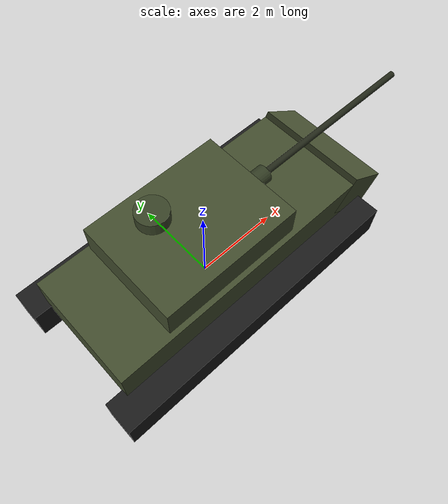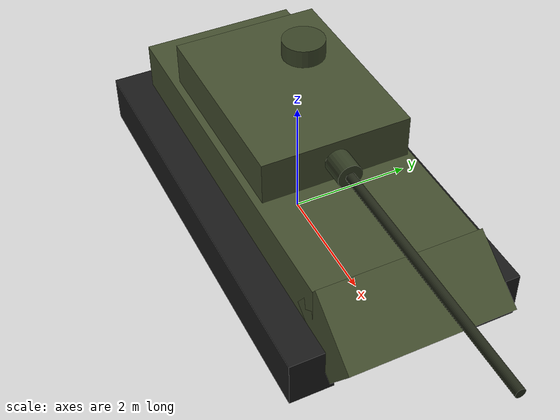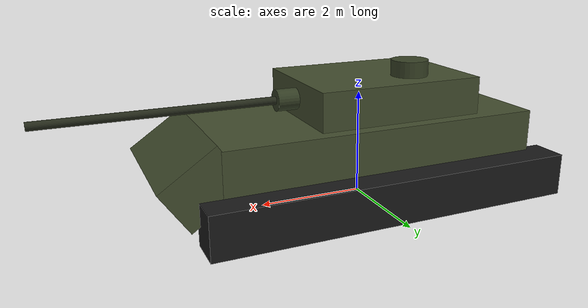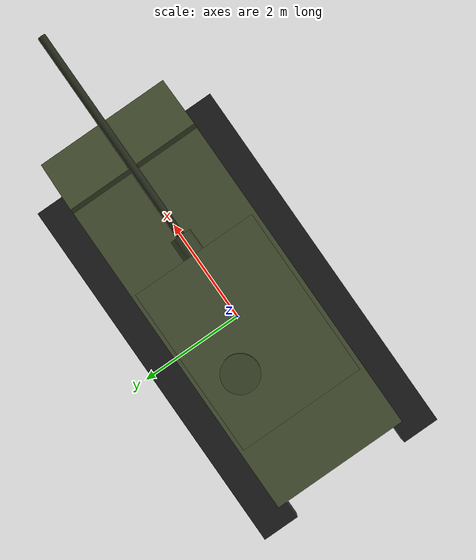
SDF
<?xml version="1.0" ?>
<sdf version="1.9">
  <model name="tank">
    <static>true</static>

    <link name="body">

      <!-- ================= TRACKS ================= -->
      <visual name="track_left_visual">
        <pose>0 1.5 0.4 0 0 0</pose>
        <geometry><box><size>7.0 0.7 0.8</size></box></geometry>
        <material>
          <ambient>0.06 0.06 0.06 1</ambient>
          <diffuse>0.10 0.10 0.10 1</diffuse>
          <specular>0.05 0.05 0.05 1</specular>
        </material>
      </visual>
      <collision name="track_left_collision">
        <pose>0 1.5 0.4 0 0 0</pose>
        <geometry><box><size>7.0 0.7 0.8</size></box></geometry>
      </collision>

      <visual name="track_right_visual">
        <pose>0 -1.5 0.4 0 0 0</pose>
        <geometry><box><size>7.0 0.7 0.8</size></box></geometry>
        <material>
          <ambient>0.06 0.06 0.06 1</ambient>
          <diffuse>0.10 0.10 0.10 1</diffuse>
          <specular>0.05 0.05 0.05 1</specular>
        </material>
      </visual>
      <collision name="track_right_collision">
        <pose>0 -1.5 0.4 0 0 0</pose>
        <geometry><box><size>7.0 0.7 0.8</size></box></geometry>
      </collision>

      <!-- ================= HULL ================= -->
      <visual name="hull_visual">
        <pose>0 0 1.1 0 0 0</pose>
        <geometry><box><size>6.2 2.6 1.0</size></box></geometry>
        <material>
          <ambient>0.20 0.24 0.14 1</ambient>
          <diffuse>0.26 0.30 0.18 1</diffuse>
          <specular>0.10 0.10 0.08 1</specular>
        </material>
      </visual>
      <collision name="hull_collision">
        <pose>0 0 1.1 0 0 0</pose>
        <geometry><box><size>6.2 2.6 1.0</size></box></geometry>
      </collision>

      <!-- sloped glacis plate at the front for silhouette -->
      <visual name="glacis_visual">
        <pose>3.4 0 1.0 0 0.6 0</pose>
        <geometry><box><size>1.2 2.6 0.9</size></box></geometry>
        <material>
          <ambient>0.20 0.24 0.14 1</ambient>
          <diffuse>0.26 0.30 0.18 1</diffuse>
        </material>
      </visual>

      <!-- ================= TURRET ================= -->
      <visual name="turret_visual">
        <pose>-0.3 0 2.0 0 0 0</pose>
        <geometry><box><size>3.2 2.4 0.7</size></box></geometry>
        <material>
          <ambient>0.20 0.24 0.14 1</ambient>
          <diffuse>0.26 0.30 0.18 1</diffuse>
          <specular>0.10 0.10 0.08 1</specular>
        </material>
      </visual>
      <collision name="turret_collision">
        <pose>-0.3 0 2.0 0 0 0</pose>
        <geometry><box><size>3.2 2.4 0.7</size></box></geometry>
      </collision>

      <!-- commander's cupola -->
      <visual name="cupola_visual">
        <pose>-0.8 0.5 2.5 0 0 0</pose>
        <geometry><cylinder><radius>0.35</radius><length>0.3</length></cylinder></geometry>
        <material>
          <ambient>0.18 0.21 0.12 1</ambient>
          <diffuse>0.22 0.26 0.15 1</diffuse>
        </material>
      </visual>

      <!-- ================= MAIN GUN ================= -->
      <!-- cylinder's native axis is Z; pitch +90deg (0 1.5708 0) lays it along +X -->
      <visual name="barrel_visual">
        <pose>3.55 0 2.0 0 1.5708 0</pose>
        <geometry><cylinder><radius>0.075</radius><length>4.6</length></cylinder></geometry>
        <material>
          <ambient>0.10 0.11 0.08 1</ambient>
          <diffuse>0.14 0.16 0.10 1</diffuse>
          <specular>0.20 0.20 0.20 1</specular>
        </material>
      </visual>
      <collision name="barrel_collision">
        <pose>3.55 0 2.0 0 1.5708 0</pose>
        <geometry><cylinder><radius>0.075</radius><length>4.6</length></cylinder></geometry>
      </collision>

      <!-- fatter mantlet where the barrel meets the turret -->
      <visual name="mantlet_visual">
        <pose>1.4 0 2.0 0 1.5708 0</pose>
        <geometry><cylinder><radius>0.2</radius><length>0.6</length></cylinder></geometry>
        <material>
          <ambient>0.16 0.19 0.11 1</ambient>
          <diffuse>0.20 0.24 0.14 1</diffuse>
        </material>
      </visual>

    </link>
  </model>
</sdf>
